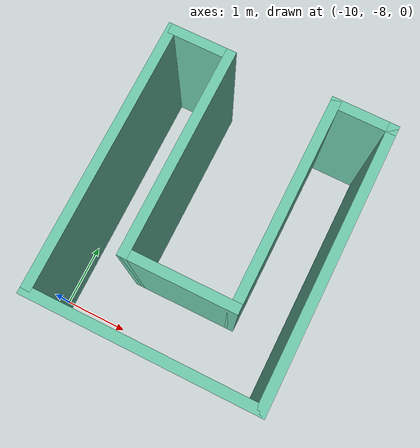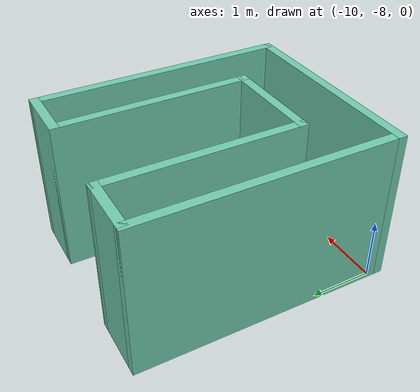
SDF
<?xml version='1.0'?>
<sdf version='1.6'>
  <model name='building'>
    <pose frame=''>-8.30681 -6.11419 0 0 -0 0</pose>
    <link name='Wall_10'>
      <collision name='Wall_10_Collision'>
        <geometry>
          <box>
            <size>1 0.15 2.5</size>
          </box>
        </geometry>
        <pose frame=''>0 0 1.25 0 -0 0</pose>
      </collision>
      <visual name='Wall_10_Visual'>
        <pose frame=''>0 0 1.25 0 -0 0</pose>
        <geometry>
          <box>
            <size>1 0.15 2.5</size>
          </box>
        </geometry>
        <material>
          <script>
            <uri>file://media/materials/scripts/gazebo.material</uri>
            <name>Gazebo/Grey</name>
          </script>
          <ambient>0.435294 0.796078 0.67451 1</ambient>
        </material>
        <meta>
          <layer>0</layer>
        </meta>
      </visual>
      <pose frame=''>-1.2 2.05 0 0 -0 0</pose>
    </link>
    <link name='Wall_11'>
      <collision name='Wall_11_Collision'>
        <geometry>
          <box>
            <size>3.25 0.15 2.5</size>
          </box>
        </geometry>
        <pose frame=''>0 0 1.25 0 -0 0</pose>
      </collision>
      <visual name='Wall_11_Visual'>
        <pose frame=''>0 0 1.25 0 -0 0</pose>
        <geometry>
          <box>
            <size>3.25 0.15 2.5</size>
          </box>
        </geometry>
        <material>
          <script>
            <uri>file://media/materials/scripts/gazebo.material</uri>
            <name>Gazebo/Grey</name>
          </script>
          <ambient>0.435294 0.796078 0.67451 1</ambient>
        </material>
        <meta>
          <layer>0</layer>
        </meta>
      </visual>
      <pose frame=''>-0.775 0.5 0 0 -0 -1.5708</pose>
    </link>
    <link name='Wall_12'>
      <collision name='Wall_12_Collision'>
        <geometry>
          <box>
            <size>1.75 0.15 2.5</size>
          </box>
        </geometry>
        <pose frame=''>0 0 1.25 0 -0 0</pose>
      </collision>
      <visual name='Wall_12_Visual'>
        <pose frame=''>0 0 1.25 0 -0 0</pose>
        <geometry>
          <box>
            <size>1.75 0.15 2.5</size>
          </box>
        </geometry>
        <material>
          <script>
            <uri>file://media/materials/scripts/gazebo.material</uri>
            <name>Gazebo/Grey</name>
          </script>
          <ambient>0.435294 0.796078 0.67451 1</ambient>
        </material>
        <meta>
          <layer>0</layer>
        </meta>
      </visual>
      <pose frame=''>0.025 -1.05 0 0 -0 0</pose>
    </link>
    <link name='Wall_13'>
      <collision name='Wall_13_Collision'>
        <geometry>
          <box>
            <size>3.25 0.15 2.5</size>
          </box>
        </geometry>
        <pose frame=''>0 0 1.25 0 -0 0</pose>
      </collision>
      <visual name='Wall_13_Visual'>
        <pose frame=''>0 0 1.25 0 -0 0</pose>
        <geometry>
          <box>
            <size>3.25 0.15 2.5</size>
          </box>
        </geometry>
        <material>
          <script>
            <uri>file://media/materials/scripts/gazebo.material</uri>
            <name>Gazebo/Grey</name>
          </script>
          <ambient>0.435294 0.796078 0.67451 1</ambient>
        </material>
        <meta>
          <layer>0</layer>
        </meta>
      </visual>
      <pose frame=''>0.825 0.5 0 0 -0 1.5708</pose>
    </link>
    <link name='Wall_14'>
      <collision name='Wall_14_Collision'>
        <geometry>
          <box>
            <size>1 0.15 2.5</size>
          </box>
        </geometry>
        <pose frame=''>0 0 1.25 0 -0 0</pose>
      </collision>
      <visual name='Wall_14_Visual'>
        <pose frame=''>0 0 1.25 0 -0 0</pose>
        <geometry>
          <box>
            <size>1 0.15 2.5</size>
          </box>
        </geometry>
        <material>
          <script>
            <uri>file://media/materials/scripts/gazebo.material</uri>
            <name>Gazebo/Grey</name>
          </script>
          <ambient>0.435294 0.796078 0.67451 1</ambient>
        </material>
        <meta>
          <layer>0</layer>
        </meta>
      </visual>
      <pose frame=''>1.25 2.05 0 0 -0 0</pose>
    </link>
    <link name='Wall_15'>
      <collision name='Wall_15_Collision'>
        <geometry>
          <box>
            <size>4.25 0.15 2.5</size>
          </box>
        </geometry>
        <pose frame=''>0 0 1.25 0 -0 0</pose>
      </collision>
      <visual name='Wall_15_Visual'>
        <pose frame=''>0 0 1.25 0 -0 0</pose>
        <geometry>
          <box>
            <size>4.25 0.15 2.5</size>
          </box>
        </geometry>
        <material>
          <script>
            <uri>file://media/materials/scripts/gazebo.material</uri>
            <name>Gazebo/Grey</name>
          </script>
          <ambient>0.435294 0.796078 0.67451 1</ambient>
        </material>
        <meta>
          <layer>0</layer>
        </meta>
      </visual>
      <pose frame=''>1.675 0 0 0 -0 -1.5708</pose>
    </link>
    <link name='Wall_16'>
      <collision name='Wall_16_Collision'>
        <geometry>
          <box>
            <size>3.5 0.15 2.5</size>
          </box>
        </geometry>
        <pose frame=''>0 0 1.25 0 -0 0</pose>
      </collision>
      <visual name='Wall_16_Visual'>
        <pose frame=''>0 0 1.25 0 -0 0</pose>
        <geometry>
          <box>
            <size>3.5 0.15 2.5</size>
          </box>
        </geometry>
        <material>
          <script>
            <uri>file://media/materials/scripts/gazebo.material</uri>
            <name>Gazebo/Grey</name>
          </script>
          <ambient>0.435294 0.796078 0.67451 1</ambient>
        </material>
        <meta>
          <layer>0</layer>
        </meta>
      </visual>
      <pose frame=''>-0 -2.05 0 0 -0 3.14159</pose>
    </link>
    <link name='Wall_17'>
      <collision name='Wall_17_Collision'>
        <geometry>
          <box>
            <size>4.25 0.15 2.5</size>
          </box>
        </geometry>
        <pose frame=''>0 0 1.25 0 -0 0</pose>
      </collision>
      <visual name='Wall_17_Visual'>
        <pose frame=''>0 0 1.25 0 -0 0</pose>
        <geometry>
          <box>
            <size>4.25 0.15 2.5</size>
          </box>
        </geometry>
        <material>
          <script>
            <uri>file://media/materials/scripts/gazebo.material</uri>
            <name>Gazebo/Grey</name>
          </script>
          <ambient>0.435294 0.796078 0.67451 1</ambient>
        </material>
        <meta>
          <layer>0</layer>
        </meta>
      </visual>
      <pose frame=''>-1.675 0 0 0 -0 1.5708</pose>
    </link>
    <static>1</static>
  </model>
</sdf>
